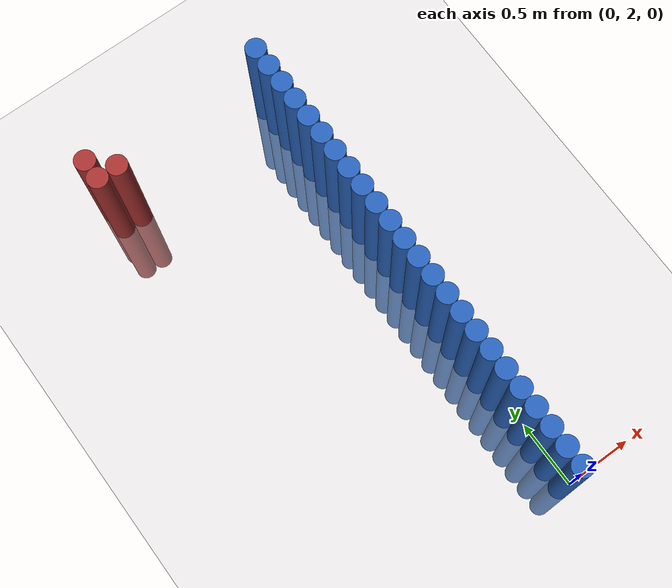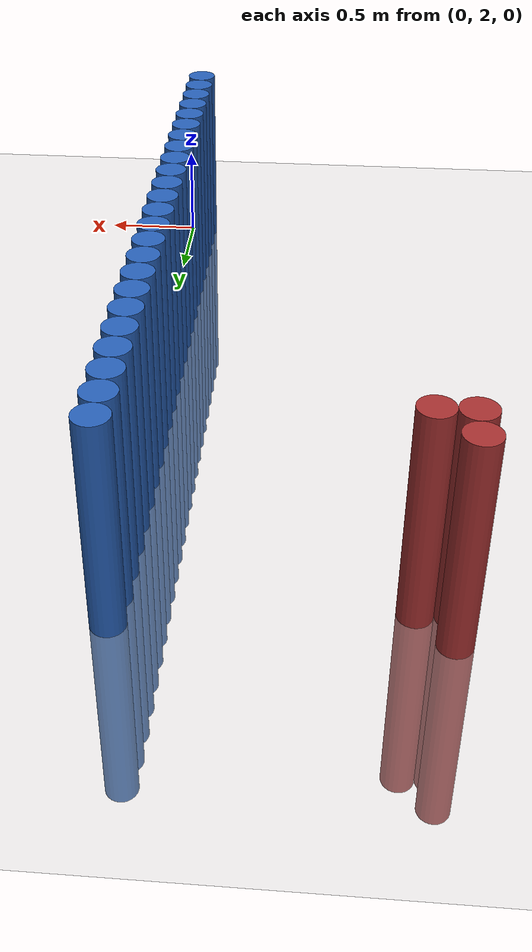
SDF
<sdf version="1.6">
 <world name="default">
  <model name="ground_plane">
   <static>1</static>
   <link name="link">
    <collision name="collision">
     <geometry><plane><normal>0 0 1</normal><size>100 100</size></plane></geometry>
     <surface><friction><ode><mu>100</mu><mu2>50</mu2></ode></friction></surface>
    </collision>
    <visual name="visual">
     <cast_shadows>0</cast_shadows>
     <geometry><plane><normal>0 0 1</normal><size>100 100</size></plane></geometry>
     <material>
      <script><uri>file://media/materials/scripts/gazebo.material</uri><name>Gazebo/Grey</name></script>
     </material>
    </visual>
   </link>
  </model>
  <model name="unit_cylinder_54">
   <static>1</static>
   <pose>-0.075000 2.025000 0.000000 0.000000 0.000000 0.000000</pose>
   <link name="link">
    <inertial>
     <mass>1</mass>
     <inertia><ixx>0.145833</ixx><ixy>0</ixy><ixz>0</ixz><iyy>0.145833</iyy><iyz>0</iyz><izz>0.125</izz></inertia>
    </inertial>
    <collision name="collision">
     <geometry><cylinder><radius>0.075000</radius><length>2</length></cylinder></geometry>
    </collision>
    <visual name="visual">
     <geometry><cylinder><radius>0.075000</radius><length>2</length></cylinder></geometry>
     <material>
      <ambient>0.152000 0.379000 0.720000 1</ambient>
      <diffuse>0.152000 0.379000 0.720000 1</diffuse>
     </material>
     <material>
      <script><name>Gazebo/Grey</name><uri>file://media/materials/scripts/gazebo.material</uri></script>
     </material>
    </visual>
   </link>
  </model>
  <model name="unit_cylinder_56">
   <static>1</static>
   <pose>-0.075000 2.175000 0.000000 0.000000 0.000000 0.000000</pose>
   <link name="link">
    <inertial>
     <mass>1</mass>
     <inertia><ixx>0.145833</ixx><ixy>0</ixy><ixz>0</ixz><iyy>0.145833</iyy><iyz>0</iyz><izz>0.125</izz></inertia>
    </inertial>
    <collision name="collision">
     <geometry><cylinder><radius>0.075000</radius><length>2</length></cylinder></geometry>
    </collision>
    <visual name="visual">
     <geometry><cylinder><radius>0.075000</radius><length>2</length></cylinder></geometry>
     <material>
      <ambient>0.152000 0.379000 0.720000 1</ambient>
      <diffuse>0.152000 0.379000 0.720000 1</diffuse>
     </material>
     <material>
      <script><name>Gazebo/Grey</name><uri>file://media/materials/scripts/gazebo.material</uri></script>
     </material>
    </visual>
   </link>
  </model>
  <model name="unit_cylinder_58">
   <static>1</static>
   <pose>-0.075000 2.325000 0.000000 0.000000 0.000000 0.000000</pose>
   <link name="link">
    <inertial>
     <mass>1</mass>
     <inertia><ixx>0.145833</ixx><ixy>0</ixy><ixz>0</ixz><iyy>0.145833</iyy><iyz>0</iyz><izz>0.125</izz></inertia>
    </inertial>
    <collision name="collision">
     <geometry><cylinder><radius>0.075000</radius><length>2</length></cylinder></geometry>
    </collision>
    <visual name="visual">
     <geometry><cylinder><radius>0.075000</radius><length>2</length></cylinder></geometry>
     <material>
      <ambient>0.152000 0.379000 0.720000 1</ambient>
      <diffuse>0.152000 0.379000 0.720000 1</diffuse>
     </material>
     <material>
      <script><name>Gazebo/Grey</name><uri>file://media/materials/scripts/gazebo.material</uri></script>
     </material>
    </visual>
   </link>
  </model>
  <model name="unit_cylinder_60">
   <static>1</static>
   <pose>-0.075000 2.475000 0.000000 0.000000 0.000000 0.000000</pose>
   <link name="link">
    <inertial>
     <mass>1</mass>
     <inertia><ixx>0.145833</ixx><ixy>0</ixy><ixz>0</ixz><iyy>0.145833</iyy><iyz>0</iyz><izz>0.125</izz></inertia>
    </inertial>
    <collision name="collision">
     <geometry><cylinder><radius>0.075000</radius><length>2</length></cylinder></geometry>
    </collision>
    <visual name="visual">
     <geometry><cylinder><radius>0.075000</radius><length>2</length></cylinder></geometry>
     <material>
      <ambient>0.152000 0.379000 0.720000 1</ambient>
      <diffuse>0.152000 0.379000 0.720000 1</diffuse>
     </material>
     <material>
      <script><name>Gazebo/Grey</name><uri>file://media/materials/scripts/gazebo.material</uri></script>
     </material>
    </visual>
   </link>
  </model>
  <model name="unit_cylinder_62">
   <static>1</static>
   <pose>-0.075000 2.625000 0.000000 0.000000 0.000000 0.000000</pose>
   <link name="link">
    <inertial>
     <mass>1</mass>
     <inertia><ixx>0.145833</ixx><ixy>0</ixy><ixz>0</ixz><iyy>0.145833</iyy><iyz>0</iyz><izz>0.125</izz></inertia>
    </inertial>
    <collision name="collision">
     <geometry><cylinder><radius>0.075000</radius><length>2</length></cylinder></geometry>
    </collision>
    <visual name="visual">
     <geometry><cylinder><radius>0.075000</radius><length>2</length></cylinder></geometry>
     <material>
      <ambient>0.152000 0.379000 0.720000 1</ambient>
      <diffuse>0.152000 0.379000 0.720000 1</diffuse>
     </material>
     <material>
      <script><name>Gazebo/Grey</name><uri>file://media/materials/scripts/gazebo.material</uri></script>
     </material>
    </visual>
   </link>
  </model>
  <model name="unit_cylinder_64">
   <static>1</static>
   <pose>-0.075000 2.775000 0.000000 0.000000 0.000000 0.000000</pose>
   <link name="link">
    <inertial>
     <mass>1</mass>
     <inertia><ixx>0.145833</ixx><ixy>0</ixy><ixz>0</ixz><iyy>0.145833</iyy><iyz>0</iyz><izz>0.125</izz></inertia>
    </inertial>
    <collision name="collision">
     <geometry><cylinder><radius>0.075000</radius><length>2</length></cylinder></geometry>
    </collision>
    <visual name="visual">
     <geometry><cylinder><radius>0.075000</radius><length>2</length></cylinder></geometry>
     <material>
      <ambient>0.152000 0.379000 0.720000 1</ambient>
      <diffuse>0.152000 0.379000 0.720000 1</diffuse>
     </material>
     <material>
      <script><name>Gazebo/Grey</name><uri>file://media/materials/scripts/gazebo.material</uri></script>
     </material>
    </visual>
   </link>
  </model>
  <model name="unit_cylinder_66">
   <static>1</static>
   <pose>-0.075000 2.925000 0.000000 0.000000 0.000000 0.000000</pose>
   <link name="link">
    <inertial>
     <mass>1</mass>
     <inertia><ixx>0.145833</ixx><ixy>0</ixy><ixz>0</ixz><iyy>0.145833</iyy><iyz>0</iyz><izz>0.125</izz></inertia>
    </inertial>
    <collision name="collision">
     <geometry><cylinder><radius>0.075000</radius><length>2</length></cylinder></geometry>
    </collision>
    <visual name="visual">
     <geometry><cylinder><radius>0.075000</radius><length>2</length></cylinder></geometry>
     <material>
      <ambient>0.152000 0.379000 0.720000 1</ambient>
      <diffuse>0.152000 0.379000 0.720000 1</diffuse>
     </material>
     <material>
      <script><name>Gazebo/Grey</name><uri>file://media/materials/scripts/gazebo.material</uri></script>
     </material>
    </visual>
   </link>
  </model>
  <model name="unit_cylinder_68">
   <static>1</static>
   <pose>-0.075000 3.075000 0.000000 0.000000 0.000000 0.000000</pose>
   <link name="link">
    <inertial>
     <mass>1</mass>
     <inertia><ixx>0.145833</ixx><ixy>0</ixy><ixz>0</ixz><iyy>0.145833</iyy><iyz>0</iyz><izz>0.125</izz></inertia>
    </inertial>
    <collision name="collision">
     <geometry><cylinder><radius>0.075000</radius><length>2</length></cylinder></geometry>
    </collision>
    <visual name="visual">
     <geometry><cylinder><radius>0.075000</radius><length>2</length></cylinder></geometry>
     <material>
      <ambient>0.152000 0.379000 0.720000 1</ambient>
      <diffuse>0.152000 0.379000 0.720000 1</diffuse>
     </material>
     <material>
      <script><name>Gazebo/Grey</name><uri>file://media/materials/scripts/gazebo.material</uri></script>
     </material>
    </visual>
   </link>
  </model>
  <model name="unit_cylinder_70">
   <static>1</static>
   <pose>-0.075000 3.225000 0.000000 0.000000 0.000000 0.000000</pose>
   <link name="link">
    <inertial>
     <mass>1</mass>
     <inertia><ixx>0.145833</ixx><ixy>0</ixy><ixz>0</ixz><iyy>0.145833</iyy><iyz>0</iyz><izz>0.125</izz></inertia>
    </inertial>
    <collision name="collision">
     <geometry><cylinder><radius>0.075000</radius><length>2</length></cylinder></geometry>
    </collision>
    <visual name="visual">
     <geometry><cylinder><radius>0.075000</radius><length>2</length></cylinder></geometry>
     <material>
      <ambient>0.152000 0.379000 0.720000 1</ambient>
      <diffuse>0.152000 0.379000 0.720000 1</diffuse>
     </material>
     <material>
      <script><name>Gazebo/Grey</name><uri>file://media/materials/scripts/gazebo.material</uri></script>
     </material>
    </visual>
   </link>
  </model>
  <model name="unit_cylinder_72">
   <static>1</static>
   <pose>-0.075000 3.375000 0.000000 0.000000 0.000000 0.000000</pose>
   <link name="link">
    <inertial>
     <mass>1</mass>
     <inertia><ixx>0.145833</ixx><ixy>0</ixy><ixz>0</ixz><iyy>0.145833</iyy><iyz>0</iyz><izz>0.125</izz></inertia>
    </inertial>
    <collision name="collision">
     <geometry><cylinder><radius>0.075000</radius><length>2</length></cylinder></geometry>
    </collision>
    <visual name="visual">
     <geometry><cylinder><radius>0.075000</radius><length>2</length></cylinder></geometry>
     <material>
      <ambient>0.152000 0.379000 0.720000 1</ambient>
      <diffuse>0.152000 0.379000 0.720000 1</diffuse>
     </material>
     <material>
      <script><name>Gazebo/Grey</name><uri>file://media/materials/scripts/gazebo.material</uri></script>
     </material>
    </visual>
   </link>
  </model>
  <model name="unit_cylinder_74">
   <static>1</static>
   <pose>-0.075000 3.525000 0.000000 0.000000 0.000000 0.000000</pose>
   <link name="link">
    <inertial>
     <mass>1</mass>
     <inertia><ixx>0.145833</ixx><ixy>0</ixy><ixz>0</ixz><iyy>0.145833</iyy><iyz>0</iyz><izz>0.125</izz></inertia>
    </inertial>
    <collision name="collision">
     <geometry><cylinder><radius>0.075000</radius><length>2</length></cylinder></geometry>
    </collision>
    <visual name="visual">
     <geometry><cylinder><radius>0.075000</radius><length>2</length></cylinder></geometry>
     <material>
      <ambient>0.152000 0.379000 0.720000 1</ambient>
      <diffuse>0.152000 0.379000 0.720000 1</diffuse>
     </material>
     <material>
      <script><name>Gazebo/Grey</name><uri>file://media/materials/scripts/gazebo.material</uri></script>
     </material>
    </visual>
   </link>
  </model>
  <model name="unit_cylinder_76">
   <static>1</static>
   <pose>-0.075000 3.675000 0.000000 0.000000 0.000000 0.000000</pose>
   <link name="link">
    <inertial>
     <mass>1</mass>
     <inertia><ixx>0.145833</ixx><ixy>0</ixy><ixz>0</ixz><iyy>0.145833</iyy><iyz>0</iyz><izz>0.125</izz></inertia>
    </inertial>
    <collision name="collision">
     <geometry><cylinder><radius>0.075000</radius><length>2</length></cylinder></geometry>
    </collision>
    <visual name="visual">
     <geometry><cylinder><radius>0.075000</radius><length>2</length></cylinder></geometry>
     <material>
      <ambient>0.152000 0.379000 0.720000 1</ambient>
      <diffuse>0.152000 0.379000 0.720000 1</diffuse>
     </material>
     <material>
      <script><name>Gazebo/Grey</name><uri>file://media/materials/scripts/gazebo.material</uri></script>
     </material>
    </visual>
   </link>
  </model>
  <model name="unit_cylinder_78">
   <static>1</static>
   <pose>-0.075000 3.825000 0.000000 0.000000 0.000000 0.000000</pose>
   <link name="link">
    <inertial>
     <mass>1</mass>
     <inertia><ixx>0.145833</ixx><ixy>0</ixy><ixz>0</ixz><iyy>0.145833</iyy><iyz>0</iyz><izz>0.125</izz></inertia>
    </inertial>
    <collision name="collision">
     <geometry><cylinder><radius>0.075000</radius><length>2</length></cylinder></geometry>
    </collision>
    <visual name="visual">
     <geometry><cylinder><radius>0.075000</radius><length>2</length></cylinder></geometry>
     <material>
      <ambient>0.152000 0.379000 0.720000 1</ambient>
      <diffuse>0.152000 0.379000 0.720000 1</diffuse>
     </material>
     <material>
      <script><name>Gazebo/Grey</name><uri>file://media/materials/scripts/gazebo.material</uri></script>
     </material>
    </visual>
   </link>
  </model>
  <model name="unit_cylinder_80">
   <static>1</static>
   <pose>-0.075000 3.975000 0.000000 0.000000 0.000000 0.000000</pose>
   <link name="link">
    <inertial>
     <mass>1</mass>
     <inertia><ixx>0.145833</ixx><ixy>0</ixy><ixz>0</ixz><iyy>0.145833</iyy><iyz>0</iyz><izz>0.125</izz></inertia>
    </inertial>
    <collision name="collision">
     <geometry><cylinder><radius>0.075000</radius><length>2</length></cylinder></geometry>
    </collision>
    <visual name="visual">
     <geometry><cylinder><radius>0.075000</radius><length>2</length></cylinder></geometry>
     <material>
      <ambient>0.152000 0.379000 0.720000 1</ambient>
      <diffuse>0.152000 0.379000 0.720000 1</diffuse>
     </material>
     <material>
      <script><name>Gazebo/Grey</name><uri>file://media/materials/scripts/gazebo.material</uri></script>
     </material>
    </visual>
   </link>
  </model>
  <model name="unit_cylinder_82">
   <static>1</static>
   <pose>-0.075000 4.125000 0.000000 0.000000 0.000000 0.000000</pose>
   <link name="link">
    <inertial>
     <mass>1</mass>
     <inertia><ixx>0.145833</ixx><ixy>0</ixy><ixz>0</ixz><iyy>0.145833</iyy><iyz>0</iyz><izz>0.125</izz></inertia>
    </inertial>
    <collision name="collision">
     <geometry><cylinder><radius>0.075000</radius><length>2</length></cylinder></geometry>
    </collision>
    <visual name="visual">
     <geometry><cylinder><radius>0.075000</radius><length>2</length></cylinder></geometry>
     <material>
      <ambient>0.152000 0.379000 0.720000 1</ambient>
      <diffuse>0.152000 0.379000 0.720000 1</diffuse>
     </material>
     <material>
      <script><name>Gazebo/Grey</name><uri>file://media/materials/scripts/gazebo.material</uri></script>
     </material>
    </visual>
   </link>
  </model>
  <model name="unit_cylinder_84">
   <static>1</static>
   <pose>-0.075000 4.275000 0.000000 0.000000 0.000000 0.000000</pose>
   <link name="link">
    <inertial>
     <mass>1</mass>
     <inertia><ixx>0.145833</ixx><ixy>0</ixy><ixz>0</ixz><iyy>0.145833</iyy><iyz>0</iyz><izz>0.125</izz></inertia>
    </inertial>
    <collision name="collision">
     <geometry><cylinder><radius>0.075000</radius><length>2</length></cylinder></geometry>
    </collision>
    <visual name="visual">
     <geometry><cylinder><radius>0.075000</radius><length>2</length></cylinder></geometry>
     <material>
      <ambient>0.152000 0.379000 0.720000 1</ambient>
      <diffuse>0.152000 0.379000 0.720000 1</diffuse>
     </material>
     <material>
      <script><name>Gazebo/Grey</name><uri>file://media/materials/scripts/gazebo.material</uri></script>
     </material>
    </visual>
   </link>
  </model>
  <model name="unit_cylinder_86">
   <static>1</static>
   <pose>-0.075000 4.425000 0.000000 0.000000 0.000000 0.000000</pose>
   <link name="link">
    <inertial>
     <mass>1</mass>
     <inertia><ixx>0.145833</ixx><ixy>0</ixy><ixz>0</ixz><iyy>0.145833</iyy><iyz>0</iyz><izz>0.125</izz></inertia>
    </inertial>
    <collision name="collision">
     <geometry><cylinder><radius>0.075000</radius><length>2</length></cylinder></geometry>
    </collision>
    <visual name="visual">
     <geometry><cylinder><radius>0.075000</radius><length>2</length></cylinder></geometry>
     <material>
      <ambient>0.152000 0.379000 0.720000 1</ambient>
      <diffuse>0.152000 0.379000 0.720000 1</diffuse>
     </material>
     <material>
      <script><name>Gazebo/Grey</name><uri>file://media/materials/scripts/gazebo.material</uri></script>
     </material>
    </visual>
   </link>
  </model>
  <model name="unit_cylinder_88">
   <static>1</static>
   <pose>-0.075000 4.575000 0.000000 0.000000 0.000000 0.000000</pose>
   <link name="link">
    <inertial>
     <mass>1</mass>
     <inertia><ixx>0.145833</ixx><ixy>0</ixy><ixz>0</ixz><iyy>0.145833</iyy><iyz>0</iyz><izz>0.125</izz></inertia>
    </inertial>
    <collision name="collision">
     <geometry><cylinder><radius>0.075000</radius><length>2</length></cylinder></geometry>
    </collision>
    <visual name="visual">
     <geometry><cylinder><radius>0.075000</radius><length>2</length></cylinder></geometry>
     <material>
      <ambient>0.152000 0.379000 0.720000 1</ambient>
      <diffuse>0.152000 0.379000 0.720000 1</diffuse>
     </material>
     <material>
      <script><name>Gazebo/Grey</name><uri>file://media/materials/scripts/gazebo.material</uri></script>
     </material>
    </visual>
   </link>
  </model>
  <model name="unit_cylinder_90">
   <static>1</static>
   <pose>-0.075000 4.725000 0.000000 0.000000 0.000000 0.000000</pose>
   <link name="link">
    <inertial>
     <mass>1</mass>
     <inertia><ixx>0.145833</ixx><ixy>0</ixy><ixz>0</ixz><iyy>0.145833</iyy><iyz>0</iyz><izz>0.125</izz></inertia>
    </inertial>
    <collision name="collision">
     <geometry><cylinder><radius>0.075000</radius><length>2</length></cylinder></geometry>
    </collision>
    <visual name="visual">
     <geometry><cylinder><radius>0.075000</radius><length>2</length></cylinder></geometry>
     <material>
      <ambient>0.152000 0.379000 0.720000 1</ambient>
      <diffuse>0.152000 0.379000 0.720000 1</diffuse>
     </material>
     <material>
      <script><name>Gazebo/Grey</name><uri>file://media/materials/scripts/gazebo.material</uri></script>
     </material>
    </visual>
   </link>
  </model>
  <model name="unit_cylinder_92">
   <static>1</static>
   <pose>-0.075000 4.875000 0.000000 0.000000 0.000000 0.000000</pose>
   <link name="link">
    <inertial>
     <mass>1</mass>
     <inertia><ixx>0.145833</ixx><ixy>0</ixy><ixz>0</ixz><iyy>0.145833</iyy><iyz>0</iyz><izz>0.125</izz></inertia>
    </inertial>
    <collision name="collision">
     <geometry><cylinder><radius>0.075000</radius><length>2</length></cylinder></geometry>
    </collision>
    <visual name="visual">
     <geometry><cylinder><radius>0.075000</radius><length>2</length></cylinder></geometry>
     <material>
      <ambient>0.152000 0.379000 0.720000 1</ambient>
      <diffuse>0.152000 0.379000 0.720000 1</diffuse>
     </material>
     <material>
      <script><name>Gazebo/Grey</name><uri>file://media/materials/scripts/gazebo.material</uri></script>
     </material>
    </visual>
   </link>
  </model>
  <model name="unit_cylinder_94">
   <static>1</static>
   <pose>-0.075000 5.025000 0.000000 0.000000 0.000000 0.000000</pose>
   <link name="link">
    <inertial>
     <mass>1</mass>
     <inertia><ixx>0.145833</ixx><ixy>0</ixy><ixz>0</ixz><iyy>0.145833</iyy><iyz>0</iyz><izz>0.125</izz></inertia>
    </inertial>
    <collision name="collision">
     <geometry><cylinder><radius>0.075000</radius><length>2</length></cylinder></geometry>
    </collision>
    <visual name="visual">
     <geometry><cylinder><radius>0.075000</radius><length>2</length></cylinder></geometry>
     <material>
      <ambient>0.152000 0.379000 0.720000 1</ambient>
      <diffuse>0.152000 0.379000 0.720000 1</diffuse>
     </material>
     <material>
      <script><name>Gazebo/Grey</name><uri>file://media/materials/scripts/gazebo.material</uri></script>
     </material>
    </visual>
   </link>
  </model>
  <model name="unit_cylinder_170">
   <static>1</static>
   <pose>-1.425000 5.325000 0.000000 0.000000 0.000000 0.000000</pose>
   <link name="link">
    <inertial>
     <mass>1</mass>
     <inertia><ixx>0.145833</ixx><ixy>0</ixy><ixz>0</ixz><iyy>0.145833</iyy><iyz>0</iyz><izz>0.125</izz></inertia>
    </inertial>
    <collision name="collision">
     <geometry><cylinder><radius>0.075000</radius><length>2</length></cylinder></geometry>
    </collision>
    <visual name="visual">
     <geometry><cylinder><radius>0.075000</radius><length>2</length></cylinder></geometry>
     <material>
      <ambient>0.648000 0.192000 0.192000 1</ambient>
      <diffuse>0.648000 0.192000 0.192000 1</diffuse>
     </material>
     <material>
      <script><name>Gazebo/Grey</name><uri>file://media/materials/scripts/gazebo.material</uri></script>
     </material>
    </visual>
   </link>
  </model>
  <model name="unit_cylinder_171">
   <static>1</static>
   <pose>-1.425000 5.475000 0.000000 0.000000 0.000000 0.000000</pose>
   <link name="link">
    <inertial>
     <mass>1</mass>
     <inertia><ixx>0.145833</ixx><ixy>0</ixy><ixz>0</ixz><iyy>0.145833</iyy><iyz>0</iyz><izz>0.125</izz></inertia>
    </inertial>
    <collision name="collision">
     <geometry><cylinder><radius>0.075000</radius><length>2</length></cylinder></geometry>
    </collision>
    <visual name="visual">
     <geometry><cylinder><radius>0.075000</radius><length>2</length></cylinder></geometry>
     <material>
      <ambient>0.648000 0.192000 0.192000 1</ambient>
      <diffuse>0.648000 0.192000 0.192000 1</diffuse>
     </material>
     <material>
      <script><name>Gazebo/Grey</name><uri>file://media/materials/scripts/gazebo.material</uri></script>
     </material>
    </visual>
   </link>
  </model>
  <model name="unit_cylinder_172">
   <static>1</static>
   <pose>-1.275000 5.325000 0.000000 0.000000 0.000000 0.000000</pose>
   <link name="link">
    <inertial>
     <mass>1</mass>
     <inertia><ixx>0.145833</ixx><ixy>0</ixy><ixz>0</ixz><iyy>0.145833</iyy><iyz>0</iyz><izz>0.125</izz></inertia>
    </inertial>
    <collision name="collision">
     <geometry><cylinder><radius>0.075000</radius><length>2</length></cylinder></geometry>
    </collision>
    <visual name="visual">
     <geometry><cylinder><radius>0.075000</radius><length>2</length></cylinder></geometry>
     <material>
      <ambient>0.648000 0.192000 0.192000 1</ambient>
      <diffuse>0.648000 0.192000 0.192000 1</diffuse>
     </material>
     <material>
      <script><name>Gazebo/Grey</name><uri>file://media/materials/scripts/gazebo.material</uri></script>
     </material>
    </visual>
   </link>
  </model>
  <model name="unit_cylinder_187">
   <static>1</static>
   <pose>-0.075000 5.175000 0.000000 0.000000 0.000000 0.000000</pose>
   <link name="link">
    <inertial>
     <mass>1</mass>
     <inertia><ixx>0.145833</ixx><ixy>0</ixy><ixz>0</ixz><iyy>0.145833</iyy><iyz>0</iyz><izz>0.125</izz></inertia>
    </inertial>
    <collision name="collision">
     <geometry><cylinder><radius>0.075000</radius><length>2</length></cylinder></geometry>
    </collision>
    <visual name="visual">
     <geometry><cylinder><radius>0.075000</radius><length>2</length></cylinder></geometry>
     <material>
      <ambient>0.152000 0.379000 0.720000 1</ambient>
      <diffuse>0.152000 0.379000 0.720000 1</diffuse>
     </material>
     <material>
      <script><name>Gazebo/Grey</name><uri>file://media/materials/scripts/gazebo.material</uri></script>
     </material>
    </visual>
   </link>
  </model>
  <model name="unit_cylinder_188">
   <static>1</static>
   <pose>-0.075000 5.325000 0.000000 0.000000 0.000000 0.000000</pose>
   <link name="link">
    <inertial>
     <mass>1</mass>
     <inertia><ixx>0.145833</ixx><ixy>0</ixy><ixz>0</ixz><iyy>0.145833</iyy><iyz>0</iyz><izz>0.125</izz></inertia>
    </inertial>
    <collision name="collision">
     <geometry><cylinder><radius>0.075000</radius><length>2</length></cylinder></geometry>
    </collision>
    <visual name="visual">
     <geometry><cylinder><radius>0.075000</radius><length>2</length></cylinder></geometry>
     <material>
      <ambient>0.152000 0.379000 0.720000 1</ambient>
      <diffuse>0.152000 0.379000 0.720000 1</diffuse>
     </material>
     <material>
      <script><name>Gazebo/Grey</name><uri>file://media/materials/scripts/gazebo.material</uri></script>
     </material>
    </visual>
   </link>
  </model>
  <model name="unit_cylinder_189">
   <static>1</static>
   <pose>-0.075000 5.475000 0.000000 0.000000 0.000000 0.000000</pose>
   <link name="link">
    <inertial>
     <mass>1</mass>
     <inertia><ixx>0.145833</ixx><ixy>0</ixy><ixz>0</ixz><iyy>0.145833</iyy><iyz>0</iyz><izz>0.125</izz></inertia>
    </inertial>
    <collision name="collision">
     <geometry><cylinder><radius>0.075000</radius><length>2</length></cylinder></geometry>
    </collision>
    <visual name="visual">
     <geometry><cylinder><radius>0.075000</radius><length>2</length></cylinder></geometry>
     <material>
      <ambient>0.152000 0.379000 0.720000 1</ambient>
      <diffuse>0.152000 0.379000 0.720000 1</diffuse>
     </material>
     <material>
      <script><name>Gazebo/Grey</name><uri>file://media/materials/scripts/gazebo.material</uri></script>
     </material>
    </visual>
   </link>
  </model>
 </world>
</sdf>
